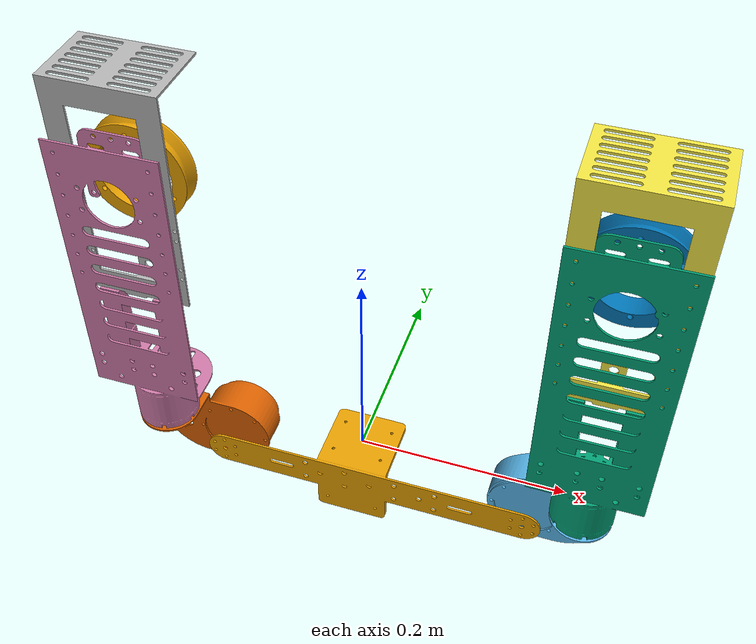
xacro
<?xml version="1.0" encoding="utf-8"?>
<robot xmlns:xacro="http://www.ros.org/wiki/xacro" name="b29">

    <xacro:arg name="use_simulation" default="true"/>
    <xacro:property name="wheel_radius" value="0.0405"/>
    <xacro:property name="wheel_edge_radius" value="0.0460"/>
    <xacro:property name="wheel_height" value="0.0153"/>
    <xacro:property name="wheel_edge_height" value="0.002"/>

    <link name="base_link">
        <inertial>
            <mass value="0.307"/>
            <origin xyz="0.003599 -0.017711 -0.020225"/>
            <inertia ixx="2.331e-4" ixy="2.1312e-5" ixz="-3e-6" iyy="7.147e-4" iyz="-4.86e-5" izz="7.489e-4"/>
        </inertial>
        <visual>
            <origin xyz="0 0 0" rpy="0 0 0"/>
            <geometry>
                <mesh filename="package://b29_control/meshes/b29/base_link.stl"/>
            </geometry>
        </visual>
        <collision>
            <origin xyz="0 -0.01 -0.017" rpy="0 0 0"/>
            <geometry>
                <box size="0.244 0.064 0.075"/>
            </geometry>
        </collision>
    </link>

    <link name="left_first_leg">
        <inertial>
            <mass value="1.655723"/>
            <origin xyz="-0.000892 0.009 -0.0013"/>
            <inertia ixx="9.527e-4" ixy="3.7e-5" ixz="-4.25e-5" iyy="1.167e-3" iyz="2.709e-5" izz="9.965e-4"/>
        </inertial>
        <visual>
            <origin xyz="0 0 0" rpy="0 0 0"/>
            <geometry>
                <mesh filename="package://b29_control/meshes/b29/left_first_leg.stl"/>
            </geometry>
        </visual>
    </link>

    <joint name="left_first_leg_joint" type="revolute">
        <origin xyz="0.1689 -0.01425 -0.016"
                rpy="0 0 0"/>
        <dynamics damping="0.0" friction="0.1"/>
        <limit effort="97" velocity="6.28" lower="-1e10" upper="1e10"/>
        <parent link="base_link"/>
        <child link="left_first_leg"/>
        <axis xyz="0 1 0"/>
    </joint>

    <link name="left_second_leg">
        <inertial>
            <mass value="2.148"/>
            <origin xyz="-0.000392 -0.002265 0.144156"/>
            <inertia ixx="2.888e-2" ixy="1.74e-7" ixz="5.5701e-5" iyy="2.91e-2" iyz="4.159e-6" izz="1.22e-3"/>
        </inertial>
        <visual>
            <origin xyz="0 0 0" rpy="0 0 0"/>
            <geometry>
                <mesh filename="package://b29_control/meshes/b29/second_leg.stl"/>
            </geometry>
        </visual>
        <collision>
            <origin xyz="0 -0.03 0.184" rpy="0 0 0"/>
            <geometry>
                <box size="0.1 0.002 0.26"/>
            </geometry>
        </collision>
    </link>

    <joint name="left_second_leg_joint" type="revolute">
        <origin xyz="0.050346 -0.03 0.04783"
                rpy="0 0 0"/>
        <dynamics damping="0.0" friction="0.1"/>
        <limit effort="27" velocity="5.44" lower="-1e10" upper="1e10"/>
        <parent link="left_first_leg"/>
        <child link="left_second_leg"/>
        <axis xyz="0 0 1"/>
    </joint>

    <link name="left_rod">
        <inertial>
            <mass value="0.083"/>
            <origin xyz="-0.000518 -0.006737 0.124837"/>
            <inertia ixx="5.17e-4" ixy="0" ixz="0" iyy="5.834e-4" iyz="-4.7556e-5" izz="1.21e-4"/>
        </inertial>
        <visual>
            <origin xyz="0 0 0" rpy="0 0 0"/>
            <geometry>
                <mesh filename="package://b29_control/meshes/b29/rod.stl"/>
            </geometry>
        </visual>
        <collision>
            <origin xyz="0 0.0 0.0" rpy="0 0 0"/>
            <geometry>
                <mesh filename="package://b29_control/meshes/b29/rod.stl"/>
            </geometry>
        </collision>
    </link>

    <joint name="left_rod_joint" type="prismatic">
        <origin xyz="0 0 0.161"
                rpy="0 0 0"/>
        <dynamics damping="0.0" friction="0.1"/>
        <limit effort="27" velocity="0.2" lower="0" upper="0.06"/>
        <parent link="left_second_leg"/>
        <child link="left_rod"/>
        <axis xyz="0 0 1"/>
    </joint>

    <link name="left_friction_wheel">
        <inertial>
            <mass value="0.046925"/>
            <origin xyz="0 0.009657 0"/>
            <inertia ixx="3.7784e-5" ixy="0" ixz="0" iyy="7.1998e-5" iyz="0" izz="3.7784e-5"/>
        </inertial>
        <visual>
            <origin xyz="0 0 0" rpy="0 0 0"/>
            <geometry>
                <mesh filename="package://b29_control/meshes/b29/friction_wheel.stl"/>
            </geometry>
        </visual>
        <collision>
            <origin xyz="0 ${wheel_edge_height/2} 0" rpy="${-pi/2} 0 0"/>
            <geometry>
                <cylinder radius="${wheel_edge_radius}" length="${wheel_edge_height}"/>
            </geometry>
        </collision>
        <collision>
            <origin xyz="0 ${wheel_edge_height+wheel_height/2} 0" rpy="${-pi/2} 0 0"/>
            <geometry>
                <cylinder radius="${wheel_radius}" length="${wheel_height}"/>
            </geometry>
        </collision>
        <collision>
            <origin xyz="0 ${wheel_edge_height+wheel_height+wheel_edge_height/2} 0" rpy="${-pi/2} 0 0"/>
            <geometry>
                <cylinder radius="${wheel_edge_radius}" length="${wheel_edge_height}"/>
            </geometry>
        </collision>
    </link>

    <joint name="left_friction_wheel_joint" type="revolute">
        <origin xyz="0 0.012 0.2665"
                rpy="0 0 0"/>
        <dynamics damping="0.0" friction="0.1"/>
        <limit effort="3.42" velocity="73" lower="-1e10" upper="1e10"/>
        <parent link="left_second_leg"/>
        <child link="left_friction_wheel"/>
        <axis xyz="0 1 0"/>
    </joint>

    <link name="right_first_leg">
        <inertial>
            <mass value="1.656"/>
            <origin xyz="-0.001 0.00879 -0.00079"/>
            <inertia ixx="9.546e-4" ixy="-3.5123e-5" ixz="4.3e-5" iyy="1.172e-3" iyz="2.844e-5" izz="9.998e-4"/>
        </inertial>
        <visual>
            <origin xyz="0 0 0" rpy="0 0 0"/>
            <geometry>
                <mesh filename="package://b29_control/meshes/b29/right_first_leg.stl"/>
            </geometry>
        </visual>
    </link>

    <joint name="right_first_leg_joint" type="revolute">
        <origin xyz="-0.1312 -0.01425 -0.016"
                rpy="0 0 0"/>
        <dynamics damping="0.0" friction="0.1"/>
        <limit effort="97" velocity="6.28" lower="-1e10" upper="1e10"/>
        <parent link="base_link"/>
        <child link="right_first_leg"/>
        <axis xyz="0 1 0"/>
    </joint>

    <link name="right_second_leg">
        <inertial>
            <mass value="2.231"/>
            <origin xyz="-0.000392 -0.002265 0.144156"/>
            <inertia ixx="2.888e-2" ixy="1.74e-7" ixz="5.5701e-5" iyy="2.91e-2" iyz="4.159e-6" izz="1.22e-3"/>
        </inertial>
        <visual>
            <origin xyz="0 0 0" rpy="0 0 0"/>
            <geometry>
                <mesh filename="package://b29_control/meshes/b29/second_leg.stl"/>
            </geometry>
        </visual>
        <collision>
            <origin xyz="0 -0.03 0.184" rpy="0 0 0"/>
            <geometry>
                <box size="0.1 0.002 0.26"/>
            </geometry>
        </collision>
    </link>

    <joint name="right_second_leg_joint" type="revolute">
        <origin xyz="-0.050346 -0.03 0.04783"
                rpy="0 0 0"/>
        <dynamics damping="0.0" friction="0.1"/>
        <limit effort="27" velocity="5.44" lower="-1e10" upper="1e10"/>
        <parent link="right_first_leg"/>
        <child link="right_second_leg"/>
        <axis xyz="0 0 1"/>
    </joint>

    <link name="right_rod">
        <inertial>
            <mass value="0.083"/>
            <origin xyz="-0.000518 -0.006737 0.124837"/>
            <inertia ixx="5.17e-4" ixy="0" ixz="0" iyy="5.834e-4" iyz="-4.7556e-5" izz="1.21e-4"/>
        </inertial>
        <visual>
            <origin xyz="0 0 0" rpy="0 0 0"/>
            <geometry>
                <mesh filename="package://b29_control/meshes/b29/rod.stl"/>
            </geometry>
        </visual>
        <collision>
            <origin xyz="0 0.0 0.0" rpy="0 0 0"/>
            <geometry>
                <mesh filename="package://b29_control/meshes/b29/rod.stl"/>
            </geometry>
        </collision>
    </link>

    <joint name="right_rod_joint" type="prismatic">
        <origin xyz="0 0 0.161"
                rpy="0 0 0"/>
        <dynamics damping="0.0" friction="0.1"/>
        <limit effort="27" velocity="0.2" lower="0" upper="0.06"/>
        <parent link="right_second_leg"/>
        <child link="right_rod"/>
        <axis xyz="0 0 1"/>
    </joint>

    <link name="right_friction_wheel">
        <inertial>
            <mass value="0.046925"/>
            <origin xyz="0 0.009657 0"/>
            <inertia ixx="3.7784e-5" ixy="0" ixz="0" iyy="7.1998e-5" iyz="0" izz="3.7784e-5"/>
        </inertial>
        <visual>
            <origin xyz="0 0 0" rpy="0 0 0"/>
            <geometry>
                <mesh filename="package://b29_control/meshes/b29/friction_wheel.stl"/>
            </geometry>
        </visual>
        <collision>
            <origin xyz="0 ${wheel_edge_height/2} 0" rpy="${-pi/2} 0 0"/>
            <geometry>
                <cylinder radius="${wheel_edge_radius}" length="${wheel_edge_height}"/>
            </geometry>
        </collision>
        <collision>
            <origin xyz="0 ${wheel_edge_height+wheel_height/2} 0" rpy="${-pi/2} 0 0"/>
            <geometry>
                <cylinder radius="${wheel_radius}" length="${wheel_height}"/>
            </geometry>
        </collision>
        <collision>
            <origin xyz="0 ${wheel_edge_height+wheel_height+wheel_edge_height/2} 0" rpy="${-pi/2} 0 0"/>
            <geometry>
                <cylinder radius="${wheel_edge_radius}" length="${wheel_edge_height}"/>
            </geometry>
        </collision>
    </link>

    <joint name="right_friction_wheel_joint" type="revolute">
        <origin xyz="0 0.012 0.2665"
                rpy="0 0 0"/>
        <dynamics damping="0.0" friction="0.1"/>
        <limit effort="3.42" velocity="73" lower="-1e10" upper="1e10"/>
        <parent link="right_second_leg"/>
        <child link="right_friction_wheel"/>
        <axis xyz="0 1 0"/>
    </joint>

    <transmission name="trans_left_first_leg_joint">
        <type>transmission_interface/SimpleTransmission</type>
        <actuator name="left_first_leg_motor">
            <mechanicalReduction>1</mechanicalReduction>
        </actuator>
        <joint name="left_first_leg_joint">
            <offset>0</offset>
            <hardwareInterface>hardware_interface/PositionJointInterface</hardwareInterface>
        </joint>
    </transmission>

    <transmission name="trans_left_second_leg_joint">
        <type>transmission_interface/SimpleTransmission</type>
        <actuator name="left_second_leg_motor">
            <mechanicalReduction>1</mechanicalReduction>
        </actuator>
        <joint name="left_second_leg_joint">
            <offset>0</offset>
            <hardwareInterface>hardware_interface/PositionJointInterface</hardwareInterface>
        </joint>
    </transmission>

    <transmission name="trans_left_rod_joint">
        <type>transmission_interface/SimpleTransmission</type>
        <actuator name="left_rod_motor">
            <mechanicalReduction>1</mechanicalReduction>
        </actuator>
        <joint name="left_rod_joint">
            <offset>0</offset>
            <hardwareInterface>hardware_interface/PositionJointInterface</hardwareInterface>
        </joint>
    </transmission>

    <transmission name="trans_left_friction_wheel_joint">
        <type>transmission_interface/SimpleTransmission</type>
        <actuator name="left_friction_wheel_motor">
            <mechanicalReduction>1</mechanicalReduction> <!--> 3508 real mechanicalReduction: 17:268 <-->
        </actuator>
        <joint name="left_friction_wheel_joint">
            <offset>0</offset>
            <hardwareInterface>hardware_interface/VelocityJointInterface</hardwareInterface>
        </joint>
    </transmission>

    <transmission name="trans_right_first_leg_joint">
        <type>transmission_interface/SimpleTransmission</type>
        <actuator name="right_first_leg_motor">
            <mechanicalReduction>1</mechanicalReduction>
        </actuator>
        <joint name="right_first_leg_joint">
            <offset>0</offset>
            <hardwareInterface>hardware_interface/PositionJointInterface</hardwareInterface>
        </joint>
    </transmission>

    <transmission name="trans_right_second_leg_joint">
        <type>transmission_interface/SimpleTransmission</type>
        <actuator name="right_second_leg_motor">
            <mechanicalReduction>1</mechanicalReduction>
        </actuator>
        <joint name="right_second_leg_joint">
            <offset>0</offset>
            <hardwareInterface>hardware_interface/PositionJointInterface</hardwareInterface>
        </joint>
    </transmission>

    <transmission name="trans_right_rod_joint">
        <type>transmission_interface/SimpleTransmission</type>
        <actuator name="right_rod_motor">
            <mechanicalReduction>1</mechanicalReduction>
        </actuator>
        <joint name="right_rod_joint">
            <offset>0</offset>
            <hardwareInterface>hardware_interface/PositionJointInterface</hardwareInterface>
        </joint>
    </transmission>

    <transmission name="trans_right_friction_wheel_joint">
        <type>transmission_interface/SimpleTransmission</type>
        <actuator name="right_friction_wheel_motor">
            <mechanicalReduction>1</mechanicalReduction>
        </actuator>
        <joint name="right_friction_wheel_joint">
            <offset>0</offset>
            <hardwareInterface>hardware_interface/VelocityJointInterface</hardwareInterface>
        </joint>
    </transmission>

    <gazebo>
        <joint name="world_fixed_joint" type="fixed">
            <parent>world</parent>
            <child>left_second_leg</child>
            <pose>0 0 -0.25 0 0 0</pose>
        </joint>
    </gazebo>

    <xacro:if value="$(arg use_simulation)">
        <gazebo>
            <plugin name="rm_ros_control" filename="librm_robot_hw_sim.so">
                <robotNamespace>/</robotNamespace>
                <robotSimType>rm_gazebo/RmRobotHWSim</robotSimType>
            </plugin>
        </gazebo>
    </xacro:if>

</robot>
